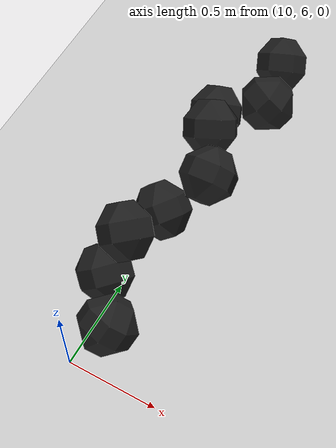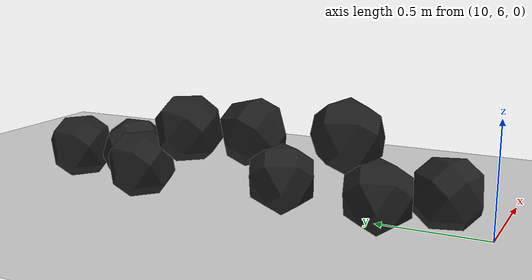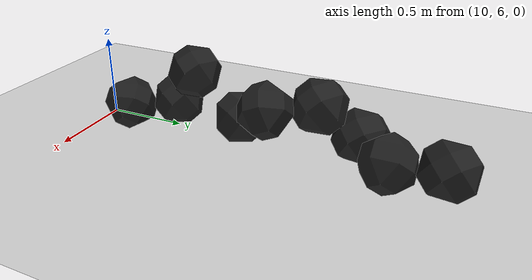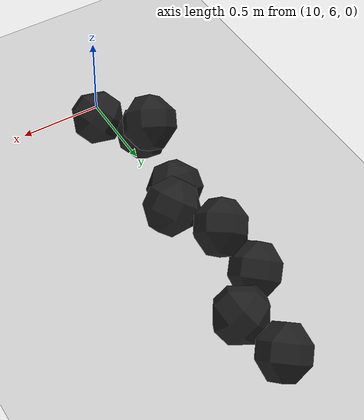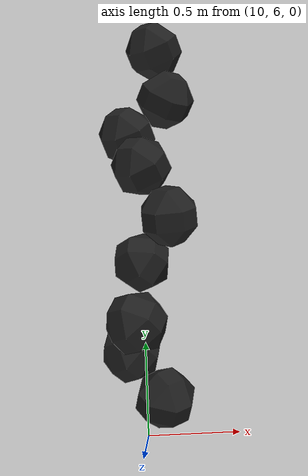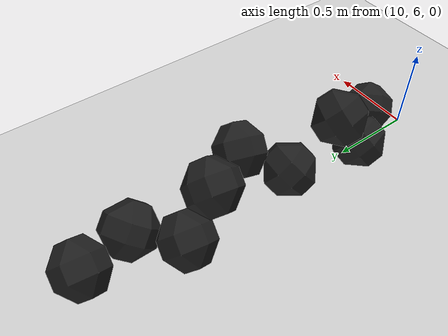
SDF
<sdf version="1.7">
 <world name="default">
  <model name="ground_plane">
   <static>1</static>
   <link name="link">
    <collision name="collision">
     <geometry><plane><normal>0 0 1</normal><size>100 100</size></plane></geometry>
     <surface><friction><ode><mu>100</mu><mu2>50</mu2></ode></friction></surface>
    </collision>
    <visual name="visual">
     <cast_shadows>0</cast_shadows>
     <geometry><plane><normal>0 0 1</normal><size>100 100</size></plane></geometry>
     <material>
      <script><uri>file://media/materials/scripts/gazebo.material</uri><name>Gazebo/Grey</name></script>
     </material>
    </visual>
   </link>
  </model>
  <model name="haoduomiantiaa_35">
   <link name="link_0">
    <inertial>
     <mass>0.2</mass>
     <inertia>
      <ixx>0.166667</ixx>
      <ixy>0</ixy>
      <ixz>0</ixz>
      <iyy>0.166667</iyy>
      <iyz>0</iyz>
      <izz>0.166667</izz>
     </inertia>
    </inertial>
    <visual name="visual">
     <geometry>
      <mesh>
       <uri>/home/lihaoyang/catkin_ws/src/pudong_gazebo/world/stl/haoduomianti.stl</uri>
       <scale>1 1 1</scale>
      </mesh>
     </geometry>
     <material>
      <lighting>1</lighting>
      <script><uri>file://media/materials/scripts/gazebo.material</uri><name>Gazebo/Black</name></script>
      <shader type="pixel"><normal_map>__default__</normal_map></shader>
      <ambient>0.3 0.3 0.3 1</ambient>
      <diffuse>0.7 0.7 0.7 1</diffuse>
      <specular>0.01 0.01 0.01 1</specular>
      <emissive>0 0 0 1</emissive>
     </material>
    </visual>
    <collision name="collision">
     <geometry>
      <mesh>
       <uri>/home/lihaoyang/catkin_ws/src/pudong_gazebo/world/stl/haoduomianti.stl</uri>
       <scale>1 1 1</scale>
      </mesh>
     </geometry>
     <surface>
      <friction>
       <ode><mu>1</mu><mu2>1</mu2><fdir1>0 0 0</fdir1><slip1>0</slip1><slip2>0</slip2></ode>
       <torsional>
        <coefficient>1</coefficient>
        <patch_radius>0</patch_radius>
        <surface_radius>0</surface_radius>
        <use_patch_radius>1</use_patch_radius>
        <ode><slip>0</slip></ode>
       </torsional>
      </friction>
      <bounce><restitution_coefficient>0</restitution_coefficient><threshold>1e+06</threshold></bounce>
      <contact>
       <collide_without_contact>0</collide_without_contact>
       <collide_without_contact_bitmask>1</collide_without_contact_bitmask>
       <collide_bitmask>1</collide_bitmask>
       <ode>
        <soft_cfm>0</soft_cfm>
        <soft_erp>0.2</soft_erp>
        <kp>1e+13</kp>
        <kd>1</kd>
        <max_vel>0.01</max_vel>
        <min_depth>0</min_depth>
       </ode>
       <bullet>
        <split_impulse>1</split_impulse>
        <split_impulse_penetration_threshold>-0.01</split_impulse_penetration_threshold>
        <soft_cfm>0</soft_cfm>
        <soft_erp>0.2</soft_erp>
        <kp>1e+13</kp>
        <kd>1</kd>
       </bullet>
      </contact>
     </surface>
    </collision>
   </link>
   <static>0</static>
   <pose>10.0026 6.93938 -0.115766 0.785302 -0.615574 0.426187</pose>
  </model>
  <model name="haoduomiantiaa_41">
   <link name="link_0">
    <inertial>
     <mass>0.2</mass>
     <inertia>
      <ixx>0.166667</ixx>
      <ixy>0</ixy>
      <ixz>0</ixz>
      <iyy>0.166667</iyy>
      <iyz>0</iyz>
      <izz>0.166667</izz>
     </inertia>
    </inertial>
    <visual name="visual">
     <geometry>
      <mesh>
       <uri>/home/lihaoyang/catkin_ws/src/pudong_gazebo/world/stl/haoduomianti.stl</uri>
       <scale>1 1 1</scale>
      </mesh>
     </geometry>
     <material>
      <lighting>1</lighting>
      <script><uri>file://media/materials/scripts/gazebo.material</uri><name>Gazebo/Black</name></script>
      <shader type="pixel"><normal_map>__default__</normal_map></shader>
      <ambient>0.3 0.3 0.3 1</ambient>
      <diffuse>0.7 0.7 0.7 1</diffuse>
      <specular>0.01 0.01 0.01 1</specular>
      <emissive>0 0 0 1</emissive>
     </material>
    </visual>
    <collision name="collision">
     <geometry>
      <mesh>
       <uri>/home/lihaoyang/catkin_ws/src/pudong_gazebo/world/stl/haoduomianti.stl</uri>
       <scale>1 1 1</scale>
      </mesh>
     </geometry>
     <surface>
      <friction>
       <ode><mu>1</mu><mu2>1</mu2><fdir1>0 0 0</fdir1><slip1>0</slip1><slip2>0</slip2></ode>
       <torsional>
        <coefficient>1</coefficient>
        <patch_radius>0</patch_radius>
        <surface_radius>0</surface_radius>
        <use_patch_radius>1</use_patch_radius>
        <ode><slip>0</slip></ode>
       </torsional>
      </friction>
      <bounce><restitution_coefficient>0</restitution_coefficient><threshold>1e+06</threshold></bounce>
      <contact>
       <collide_without_contact>0</collide_without_contact>
       <collide_without_contact_bitmask>1</collide_without_contact_bitmask>
       <collide_bitmask>1</collide_bitmask>
       <ode>
        <soft_cfm>0</soft_cfm>
        <soft_erp>0.2</soft_erp>
        <kp>1e+13</kp>
        <kd>1</kd>
        <max_vel>0.01</max_vel>
        <min_depth>0</min_depth>
       </ode>
       <bullet>
        <split_impulse>1</split_impulse>
        <split_impulse_penetration_threshold>-0.01</split_impulse_penetration_threshold>
        <soft_cfm>0</soft_cfm>
        <soft_erp>0.2</soft_erp>
        <kp>1e+13</kp>
        <kd>1</kd>
       </bullet>
      </contact>
     </surface>
    </collision>
   </link>
   <static>0</static>
   <pose>9.94137 7.65008 -0.115484 0.785388 -0.615423 1.91478</pose>
  </model>
  <model name="haoduomiantiaa_57">
   <link name="link_0">
    <inertial>
     <mass>0.2</mass>
     <inertia>
      <ixx>0.166667</ixx>
      <ixy>0</ixy>
      <ixz>0</ixz>
      <iyy>0.166667</iyy>
      <iyz>0</iyz>
      <izz>0.166667</izz>
     </inertia>
    </inertial>
    <visual name="visual">
     <geometry>
      <mesh>
       <uri>/home/lihaoyang/catkin_ws/src/pudong_gazebo/world/stl/haoduomianti.stl</uri>
       <scale>1 1 1</scale>
      </mesh>
     </geometry>
     <material>
      <lighting>1</lighting>
      <script><uri>file://media/materials/scripts/gazebo.material</uri><name>Gazebo/Black</name></script>
      <shader type="pixel"><normal_map>__default__</normal_map></shader>
      <ambient>0.3 0.3 0.3 1</ambient>
      <diffuse>0.7 0.7 0.7 1</diffuse>
      <specular>0.01 0.01 0.01 1</specular>
      <emissive>0 0 0 1</emissive>
     </material>
    </visual>
    <collision name="collision">
     <geometry>
      <mesh>
       <uri>/home/lihaoyang/catkin_ws/src/pudong_gazebo/world/stl/haoduomianti.stl</uri>
       <scale>1 1 1</scale>
      </mesh>
     </geometry>
     <surface>
      <friction>
       <ode><mu>1</mu><mu2>1</mu2><fdir1>0 0 0</fdir1><slip1>0</slip1><slip2>0</slip2></ode>
       <torsional>
        <coefficient>1</coefficient>
        <patch_radius>0</patch_radius>
        <surface_radius>0</surface_radius>
        <use_patch_radius>1</use_patch_radius>
        <ode><slip>0</slip></ode>
       </torsional>
      </friction>
      <bounce><restitution_coefficient>0</restitution_coefficient><threshold>1e+06</threshold></bounce>
      <contact>
       <collide_without_contact>0</collide_without_contact>
       <collide_without_contact_bitmask>1</collide_without_contact_bitmask>
       <collide_bitmask>1</collide_bitmask>
       <ode>
        <soft_cfm>0</soft_cfm>
        <soft_erp>0.2</soft_erp>
        <kp>1e+13</kp>
        <kd>1</kd>
        <max_vel>0.01</max_vel>
        <min_depth>0</min_depth>
       </ode>
       <bullet>
        <split_impulse>1</split_impulse>
        <split_impulse_penetration_threshold>-0.01</split_impulse_penetration_threshold>
        <soft_cfm>0</soft_cfm>
        <soft_erp>0.2</soft_erp>
        <kp>1e+13</kp>
        <kd>1</kd>
       </bullet>
      </contact>
     </surface>
    </collision>
   </link>
   <static>0</static>
   <pose>9.93242 6.46568 -0.115455 0.78578 -0.615658 -1.80064</pose>
  </model>
  <model name="haoduomiantiaa_65">
   <link name="link_0">
    <inertial>
     <mass>0.2</mass>
     <inertia>
      <ixx>0.166667</ixx>
      <ixy>0</ixy>
      <ixz>0</ixz>
      <iyy>0.166667</iyy>
      <iyz>0</iyz>
      <izz>0.166667</izz>
     </inertia>
    </inertial>
    <visual name="visual">
     <geometry>
      <mesh>
       <uri>/home/lihaoyang/catkin_ws/src/pudong_gazebo/world/stl/haoduomianti.stl</uri>
       <scale>1 1 1</scale>
      </mesh>
     </geometry>
     <material>
      <lighting>1</lighting>
      <script><uri>file://media/materials/scripts/gazebo.material</uri><name>Gazebo/Black</name></script>
      <shader type="pixel"><normal_map>__default__</normal_map></shader>
      <ambient>0.3 0.3 0.3 1</ambient>
      <diffuse>0.7 0.7 0.7 1</diffuse>
      <specular>0.01 0.01 0.01 1</specular>
      <emissive>0 0 0 1</emissive>
     </material>
    </visual>
    <collision name="collision">
     <geometry>
      <mesh>
       <uri>/home/lihaoyang/catkin_ws/src/pudong_gazebo/world/stl/haoduomianti.stl</uri>
       <scale>1 1 1</scale>
      </mesh>
     </geometry>
     <surface>
      <friction>
       <ode><mu>1</mu><mu2>1</mu2><fdir1>0 0 0</fdir1><slip1>0</slip1><slip2>0</slip2></ode>
       <torsional>
        <coefficient>1</coefficient>
        <patch_radius>0</patch_radius>
        <surface_radius>0</surface_radius>
        <use_patch_radius>1</use_patch_radius>
        <ode><slip>0</slip></ode>
       </torsional>
      </friction>
      <bounce><restitution_coefficient>0</restitution_coefficient><threshold>1e+06</threshold></bounce>
      <contact>
       <collide_without_contact>0</collide_without_contact>
       <collide_without_contact_bitmask>1</collide_without_contact_bitmask>
       <collide_bitmask>1</collide_bitmask>
       <ode>
        <soft_cfm>0</soft_cfm>
        <soft_erp>0.2</soft_erp>
        <kp>1e+13</kp>
        <kd>1</kd>
        <max_vel>0.01</max_vel>
        <min_depth>0</min_depth>
       </ode>
       <bullet>
        <split_impulse>1</split_impulse>
        <split_impulse_penetration_threshold>-0.01</split_impulse_penetration_threshold>
        <soft_cfm>0</soft_cfm>
        <soft_erp>0.2</soft_erp>
        <kp>1e+13</kp>
        <kd>1</kd>
       </bullet>
      </contact>
     </surface>
    </collision>
   </link>
   <static>0</static>
   <pose>10.0277 7.45868 0.063091 0.917802 -0.613746 -0.18811</pose>
  </model>
  <model name="haoduomiantiaa_116">
   <link name="link_0">
    <inertial>
     <mass>0.2</mass>
     <inertia>
      <ixx>0.166667</ixx>
      <ixy>0</ixy>
      <ixz>0</ixz>
      <iyy>0.166667</iyy>
      <iyz>0</iyz>
      <izz>0.166667</izz>
     </inertia>
    </inertial>
    <visual name="visual">
     <geometry>
      <mesh>
       <uri>/home/lihaoyang/catkin_ws/src/pudong_gazebo/world/stl/haoduomianti.stl</uri>
       <scale>1 1 1</scale>
      </mesh>
     </geometry>
     <material>
      <lighting>1</lighting>
      <script><uri>file://media/materials/scripts/gazebo.material</uri><name>Gazebo/Black</name></script>
      <shader type="pixel"><normal_map>__default__</normal_map></shader>
      <ambient>0.3 0.3 0.3 1</ambient>
      <diffuse>0.7 0.7 0.7 1</diffuse>
      <specular>0.01 0.01 0.01 1</specular>
      <emissive>0 0 0 1</emissive>
     </material>
    </visual>
    <collision name="collision">
     <geometry>
      <mesh>
       <uri>/home/lihaoyang/catkin_ws/src/pudong_gazebo/world/stl/haoduomianti.stl</uri>
       <scale>1 1 1</scale>
      </mesh>
     </geometry>
     <surface>
      <friction>
       <ode><mu>1</mu><mu2>1</mu2><fdir1>0 0 0</fdir1><slip1>0</slip1><slip2>0</slip2></ode>
       <torsional>
        <coefficient>1</coefficient>
        <patch_radius>0</patch_radius>
        <surface_radius>0</surface_radius>
        <use_patch_radius>1</use_patch_radius>
        <ode><slip>0</slip></ode>
       </torsional>
      </friction>
      <bounce><restitution_coefficient>0</restitution_coefficient><threshold>1e+06</threshold></bounce>
      <contact>
       <collide_without_contact>0</collide_without_contact>
       <collide_without_contact_bitmask>1</collide_without_contact_bitmask>
       <collide_bitmask>1</collide_bitmask>
       <ode>
        <soft_cfm>0</soft_cfm>
        <soft_erp>0.2</soft_erp>
        <kp>1e+13</kp>
        <kd>1</kd>
        <max_vel>0.01</max_vel>
        <min_depth>0</min_depth>
       </ode>
       <bullet>
        <split_impulse>1</split_impulse>
        <split_impulse_penetration_threshold>-0.01</split_impulse_penetration_threshold>
        <soft_cfm>0</soft_cfm>
        <soft_erp>0.2</soft_erp>
        <kp>1e+13</kp>
        <kd>1</kd>
       </bullet>
      </contact>
     </surface>
    </collision>
   </link>
   <static>0</static>
   <pose>10.0031 6.61301 0.11815 0.906066 -0.606305 -2.0096</pose>
  </model>
  <model name="haoduomiantiaa_132">
   <link name="link_0">
    <inertial>
     <mass>0.2</mass>
     <inertia>
      <ixx>0.166667</ixx>
      <ixy>0</ixy>
      <ixz>0</ixz>
      <iyy>0.166667</iyy>
      <iyz>0</iyz>
      <izz>0.166667</izz>
     </inertia>
    </inertial>
    <visual name="visual">
     <geometry>
      <mesh>
       <uri>/home/lihaoyang/catkin_ws/src/pudong_gazebo/world/stl/haoduomianti.stl</uri>
       <scale>1 1 1</scale>
      </mesh>
     </geometry>
     <material>
      <lighting>1</lighting>
      <script><uri>file://media/materials/scripts/gazebo.material</uri><name>Gazebo/Black</name></script>
      <shader type="pixel"><normal_map>__default__</normal_map></shader>
      <ambient>0.3 0.3 0.3 1</ambient>
      <diffuse>0.7 0.7 0.7 1</diffuse>
      <specular>0.01 0.01 0.01 1</specular>
      <emissive>0 0 0 1</emissive>
     </material>
    </visual>
    <collision name="collision">
     <geometry>
      <mesh>
       <uri>/home/lihaoyang/catkin_ws/src/pudong_gazebo/world/stl/haoduomianti.stl</uri>
       <scale>1 1 1</scale>
      </mesh>
     </geometry>
     <surface>
      <friction>
       <ode><mu>1</mu><mu2>1</mu2><fdir1>0 0 0</fdir1><slip1>0</slip1><slip2>0</slip2></ode>
       <torsional>
        <coefficient>1</coefficient>
        <patch_radius>0</patch_radius>
        <surface_radius>0</surface_radius>
        <use_patch_radius>1</use_patch_radius>
        <ode><slip>0</slip></ode>
       </torsional>
      </friction>
      <bounce><restitution_coefficient>0</restitution_coefficient><threshold>1e+06</threshold></bounce>
      <contact>
       <collide_without_contact>0</collide_without_contact>
       <collide_without_contact_bitmask>1</collide_without_contact_bitmask>
       <collide_bitmask>1</collide_bitmask>
       <ode>
        <soft_cfm>0</soft_cfm>
        <soft_erp>0.2</soft_erp>
        <kp>1e+13</kp>
        <kd>1</kd>
        <max_vel>0.01</max_vel>
        <min_depth>0</min_depth>
       </ode>
       <bullet>
        <split_impulse>1</split_impulse>
        <split_impulse_penetration_threshold>-0.01</split_impulse_penetration_threshold>
        <soft_cfm>0</soft_cfm>
        <soft_erp>0.2</soft_erp>
        <kp>1e+13</kp>
        <kd>1</kd>
       </bullet>
      </contact>
     </surface>
    </collision>
   </link>
   <static>0</static>
   <pose>10.166 7.85145 -0.11547 0.785403 -0.615478 -1.04757</pose>
  </model>
  <model name="haoduomiantiaa_153">
   <link name="link_0">
    <inertial>
     <mass>0.2</mass>
     <inertia>
      <ixx>0.166667</ixx>
      <ixy>0</ixy>
      <ixz>0</ixz>
      <iyy>0.166667</iyy>
      <iyz>0</iyz>
      <izz>0.166667</izz>
     </inertia>
    </inertial>
    <visual name="visual">
     <geometry>
      <mesh>
       <uri>/home/lihaoyang/catkin_ws/src/pudong_gazebo/world/stl/haoduomianti.stl</uri>
       <scale>1 1 1</scale>
      </mesh>
     </geometry>
     <material>
      <lighting>1</lighting>
      <script><uri>file://media/materials/scripts/gazebo.material</uri><name>Gazebo/Black</name></script>
      <shader type="pixel"><normal_map>__default__</normal_map></shader>
      <ambient>0.3 0.3 0.3 1</ambient>
      <diffuse>0.7 0.7 0.7 1</diffuse>
      <specular>0.01 0.01 0.01 1</specular>
      <emissive>0 0 0 1</emissive>
     </material>
    </visual>
    <collision name="collision">
     <geometry>
      <mesh>
       <uri>/home/lihaoyang/catkin_ws/src/pudong_gazebo/world/stl/haoduomianti.stl</uri>
       <scale>1 1 1</scale>
      </mesh>
     </geometry>
     <surface>
      <friction>
       <ode><mu>1</mu><mu2>1</mu2><fdir1>0 0 0</fdir1><slip1>0</slip1><slip2>0</slip2></ode>
       <torsional>
        <coefficient>1</coefficient>
        <patch_radius>0</patch_radius>
        <surface_radius>0</surface_radius>
        <use_patch_radius>1</use_patch_radius>
        <ode><slip>0</slip></ode>
       </torsional>
      </friction>
      <bounce><restitution_coefficient>0</restitution_coefficient><threshold>1e+06</threshold></bounce>
      <contact>
       <collide_without_contact>0</collide_without_contact>
       <collide_without_contact_bitmask>1</collide_without_contact_bitmask>
       <collide_bitmask>1</collide_bitmask>
       <ode>
        <soft_cfm>0</soft_cfm>
        <soft_erp>0.2</soft_erp>
        <kp>1e+13</kp>
        <kd>1</kd>
        <max_vel>0.01</max_vel>
        <min_depth>0</min_depth>
       </ode>
       <bullet>
        <split_impulse>1</split_impulse>
        <split_impulse_penetration_threshold>-0.01</split_impulse_penetration_threshold>
        <soft_cfm>0</soft_cfm>
        <soft_erp>0.2</soft_erp>
        <kp>1e+13</kp>
        <kd>1</kd>
       </bullet>
      </contact>
     </surface>
    </collision>
   </link>
   <static>0</static>
   <pose>10.1623 7.11402 0.048178 0.791822 -0.422362 1.6273</pose>
  </model>
  <model name="haoduomiantiaa_180">
   <link name="link_0">
    <inertial>
     <mass>0.2</mass>
     <inertia>
      <ixx>0.166667</ixx>
      <ixy>0</ixy>
      <ixz>0</ixz>
      <iyy>0.166667</iyy>
      <iyz>0</iyz>
      <izz>0.166667</izz>
     </inertia>
    </inertial>
    <visual name="visual">
     <geometry>
      <mesh>
       <uri>/home/lihaoyang/catkin_ws/src/pudong_gazebo/world/stl/haoduomianti.stl</uri>
       <scale>1 1 1</scale>
      </mesh>
     </geometry>
     <material>
      <lighting>1</lighting>
      <script><uri>file://media/materials/scripts/gazebo.material</uri><name>Gazebo/Black</name></script>
      <shader type="pixel"><normal_map>__default__</normal_map></shader>
      <ambient>0.3 0.3 0.3 1</ambient>
      <diffuse>0.7 0.7 0.7 1</diffuse>
      <specular>0.01 0.01 0.01 1</specular>
      <emissive>0 0 0 1</emissive>
     </material>
    </visual>
    <collision name="collision">
     <geometry>
      <mesh>
       <uri>/home/lihaoyang/catkin_ws/src/pudong_gazebo/world/stl/haoduomianti.stl</uri>
       <scale>1 1 1</scale>
      </mesh>
     </geometry>
     <surface>
      <friction>
       <ode><mu>1</mu><mu2>1</mu2><fdir1>0 0 0</fdir1><slip1>0</slip1><slip2>0</slip2></ode>
       <torsional>
        <coefficient>1</coefficient>
        <patch_radius>0</patch_radius>
        <surface_radius>0</surface_radius>
        <use_patch_radius>1</use_patch_radius>
        <ode><slip>0</slip></ode>
       </torsional>
      </friction>
      <bounce><restitution_coefficient>0</restitution_coefficient><threshold>1e+06</threshold></bounce>
      <contact>
       <collide_without_contact>0</collide_without_contact>
       <collide_without_contact_bitmask>1</collide_without_contact_bitmask>
       <collide_bitmask>1</collide_bitmask>
       <ode>
        <soft_cfm>0</soft_cfm>
        <soft_erp>0.2</soft_erp>
        <kp>1e+13</kp>
        <kd>1</kd>
        <max_vel>0.01</max_vel>
        <min_depth>0</min_depth>
       </ode>
       <bullet>
        <split_impulse>1</split_impulse>
        <split_impulse_penetration_threshold>-0.01</split_impulse_penetration_threshold>
        <soft_cfm>0</soft_cfm>
        <soft_erp>0.2</soft_erp>
        <kp>1e+13</kp>
        <kd>1</kd>
       </bullet>
      </contact>
     </surface>
    </collision>
   </link>
   <static>0</static>
   <pose>10.1089 8.14348 -0.11547 0.785401 -0.61548 1.96756</pose>
  </model>
  <model name="haoduomiantiaa_195">
   <link name="link_0">
    <inertial>
     <mass>0.2</mass>
     <inertia>
      <ixx>0.166667</ixx>
      <ixy>0</ixy>
      <ixz>0</ixz>
      <iyy>0.166667</iyy>
      <iyz>0</iyz>
      <izz>0.166667</izz>
     </inertia>
    </inertial>
    <visual name="visual">
     <geometry>
      <mesh>
       <uri>/home/lihaoyang/catkin_ws/src/pudong_gazebo/world/stl/haoduomianti.stl</uri>
       <scale>1 1 1</scale>
      </mesh>
     </geometry>
     <material>
      <lighting>1</lighting>
      <script><uri>file://media/materials/scripts/gazebo.material</uri><name>Gazebo/Black</name></script>
      <shader type="pixel"><normal_map>__default__</normal_map></shader>
      <ambient>0.3 0.3 0.3 1</ambient>
      <diffuse>0.7 0.7 0.7 1</diffuse>
      <specular>0.01 0.01 0.01 1</specular>
      <emissive>0 0 0 1</emissive>
     </material>
    </visual>
    <collision name="collision">
     <geometry>
      <mesh>
       <uri>/home/lihaoyang/catkin_ws/src/pudong_gazebo/world/stl/haoduomianti.stl</uri>
       <scale>1 1 1</scale>
      </mesh>
     </geometry>
     <surface>
      <friction>
       <ode><mu>1</mu><mu2>1</mu2><fdir1>0 0 0</fdir1><slip1>0</slip1><slip2>0</slip2></ode>
       <torsional>
        <coefficient>1</coefficient>
        <patch_radius>0</patch_radius>
        <surface_radius>0</surface_radius>
        <use_patch_radius>1</use_patch_radius>
        <ode><slip>0</slip></ode>
       </torsional>
      </friction>
      <bounce><restitution_coefficient>0</restitution_coefficient><threshold>1e+06</threshold></bounce>
      <contact>
       <collide_without_contact>0</collide_without_contact>
       <collide_without_contact_bitmask>1</collide_without_contact_bitmask>
       <collide_bitmask>1</collide_bitmask>
       <ode>
        <soft_cfm>0</soft_cfm>
        <soft_erp>0.2</soft_erp>
        <kp>1e+13</kp>
        <kd>1</kd>
        <max_vel>0.01</max_vel>
        <min_depth>0</min_depth>
       </ode>
       <bullet>
        <split_impulse>1</split_impulse>
        <split_impulse_penetration_threshold>-0.01</split_impulse_penetration_threshold>
        <soft_cfm>0</soft_cfm>
        <soft_erp>0.2</soft_erp>
        <kp>1e+13</kp>
        <kd>1</kd>
       </bullet>
      </contact>
     </surface>
    </collision>
   </link>
   <static>0</static>
   <pose>10.1021 6.21924 -0.11551 0.785402 -0.615466 -0.781604</pose>
  </model>
 </world>
</sdf>
